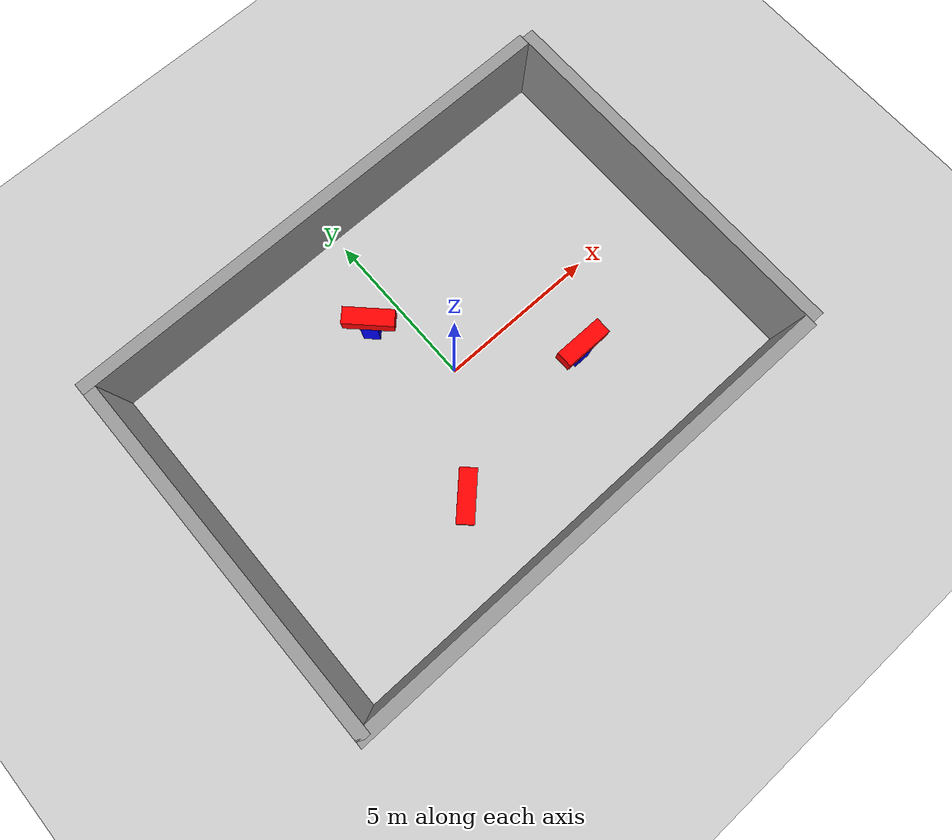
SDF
<sdf version="1.7">
  <world name="default">
    <model name="Workshop">
      <link name="wall_left">
        <collision name="wall_left_Collision">
          <geometry>
            <box>
              <size>15.65 0.375 2.5</size>
            </box>
          </geometry>
          <pose>0.0 0.0 1.25 0.0 -0.0 0.0</pose>
          <max_contacts>10</max_contacts>
          <surface>
            <contact><ode/></contact>
            <bounce/>
            <friction>
              <torsional><ode/></torsional>
              <ode/>
            </friction>
          </surface>
        </collision>
        <visual name="wall_left_Visual">
          <pose>0.0 0.0 1.25 0.0 -0.0 0.0</pose>
          <geometry>
            <box>
              <size>15.65 0.375 2.5</size>
            </box>
          </geometry>
          <material>
            <script>
              <uri>file://media/materials/scripts/gazebo.material</uri>
              <name>Gazebo/Grey</name>
            </script>
            <ambient>0 0 0 1</ambient>
          </material>
        </visual>
        <pose>-0.18625 5.6214 0.0 0.0 0.0 0.0</pose>
        <self_collide>0</self_collide>
        <enable_wind>0</enable_wind>
        <kinematic>0</kinematic>
      </link>
      <link name="wall_right">
        <collision name="wall_right_Collision">
          <geometry>
            <box>
              <size>15.65 0.375 2.5</size>
            </box>
          </geometry>
          <pose>0.0 0.0 1.25 0.0 -0.0 0.0</pose>
          <max_contacts>10</max_contacts>
          <surface>
            <contact><ode/></contact>
            <bounce/>
            <friction>
              <torsional><ode/></torsional>
              <ode/>
            </friction>
          </surface>
        </collision>
        <visual name="wall_right_Visual">
          <pose>0.0 0.0 1.25 0.0 -0.0 0.0</pose>
          <geometry>
            <box>
              <size>15.65 0.375 2.5</size>
            </box>
          </geometry>
          <material>
            <script>
              <uri>file://media/materials/scripts/gazebo.material</uri>
              <name>Gazebo/Grey</name>
            </script>
            <ambient>0 0 0 1</ambient>
          </material>
        </visual>
        <pose>-0.18625 -5.6214 0.0 0.0 0.0 0.0</pose>
        <self_collide>0</self_collide>
        <enable_wind>0</enable_wind>
        <kinematic>0</kinematic>
      </link>
      <link name="wall_top">
        <collision name="wall_top_Collision">
          <geometry>
            <box>
              <size>11.4 0.375 2.5</size>
            </box>
          </geometry>
          <pose>0.0 0.0 1.25 0.0 -0.0 0.0</pose>
          <max_contacts>10</max_contacts>
          <surface>
            <contact><ode/></contact>
            <bounce/>
            <friction>
              <torsional><ode/></torsional>
              <ode/>
            </friction>
          </surface>
        </collision>
        <visual name="wall_top_Visual">
          <pose>0.0 0.0 1.25 0.0 -0.0 0.0</pose>
          <geometry>
            <box>
              <size>11.4 0.375 2.5</size>
            </box>
          </geometry>
          <material>
            <script>
              <uri>file://media/materials/scripts/gazebo.material</uri>
              <name>Gazebo/Grey</name>
            </script>
            <ambient>0 0 0 1</ambient>
          </material>
        </visual>
        <pose>7.82375 0.0 0.0 0.0 0.0 -1.5708</pose>
        <self_collide>0</self_collide>
        <enable_wind>0</enable_wind>
        <kinematic>0</kinematic>
      </link>
      <link name="wall_bottom">
        <collision name="wall_bottom_Collision">
          <geometry>
            <box>
              <size>11.4 0.375 2.5</size>
            </box>
          </geometry>
          <pose>0.0 0.0 1.25 0.0 -0.0 0.0</pose>
          <max_contacts>10</max_contacts>
          <surface>
            <contact><ode/></contact>
            <bounce/>
            <friction>
              <torsional><ode/></torsional>
              <ode/>
            </friction>
          </surface>
        </collision>
        <visual name="wall_bottom_Visual">
          <pose>0.0 0.0 1.25 0.0 -0.0 0.0</pose>
          <geometry>
            <box>
              <size>11.4 0.375 2.5</size>
            </box>
          </geometry>
          <material>
            <script>
              <uri>file://media/materials/scripts/gazebo.material</uri>
              <name>Gazebo/Grey</name>
            </script>
            <ambient>0 0 0 1</ambient>
          </material>
        </visual>
        <pose>-7.82375 0.0 0.0 0.0 0.0 -1.5708</pose>
        <self_collide>0</self_collide>
        <enable_wind>0</enable_wind>
        <kinematic>0</kinematic>
      </link>
      <static>1</static>
      <pose>0 0 0 0 0 0</pose>
    </model>

    <model name="ground_plane">
      <static>1</static>
      <link name="link">
        <collision name="collision">
          <geometry>
            <plane>
              <normal>0 0 1</normal>
              <size>500 500</size>
            </plane>
          </geometry>
          <surface>
            <friction>
              <ode>
                <mu>100</mu>
                <mu2>50</mu2>
              </ode>
              <torsional><ode/></torsional>
            </friction>
            <contact><ode/></contact>
            <bounce/>
          </surface>
          <max_contacts>10</max_contacts>
        </collision>
        <visual name="visual">
          <cast_shadows>0</cast_shadows>
          <geometry>
            <plane>
              <normal>0 0 1</normal>
              <size>500 500</size>
            </plane>
          </geometry>
          <material>
            <script>
              <uri>file://media/materials/scripts/gazebo.material</uri>
              <name>Gazebo/Grey</name>
            </script>
          </material>
        </visual>
        <self_collide>0</self_collide>
        <enable_wind>0</enable_wind>
        <kinematic>0</kinematic>
      </link>
    </model>

    <include>
      <uri>model://T-shape-obstacle</uri>
      <name>T-obstacle-1</name>
      <pose>3 -2 0.0 0.0 0 0</pose>
    </include>

    <include>
      <uri>model://T-shape-obstacle</uri>
      <name>T-obstacle-2</name>
      <pose>-1 2.5 0.0 0 0.0 -0.7854</pose>
    </include>

    <include>
      <uri>model://T-shape-obstacle</uri>
      <name>T-obstacle-3</name>
      <pose>-2.2 -3 0.0 0 0 0.7854</pose>
    </include>

    <physics type="ode">
      <real_time_update_rate>1250</real_time_update_rate>  <!-- Run as fast as possible -->
      <max_step_size>0.002</max_step_size>               <!-- Larger steps = faster sim -->
    </physics>
    <gravity>0 0 -9.8</gravity>

  </world>
</sdf>

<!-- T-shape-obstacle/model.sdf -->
<sdf version="1.6">
  <model name="T-shape-obstacle">
    <static>true</static>

    <!-- Vertical trunk (blue) -->
    <link name="trunk">
      <pose>0 0 0.5 0 0 0</pose>
      <collision name="collision">
        <geometry>
          <box>
            <size>0.5 0.5 1.0</size>
          </box>
        </geometry>
      </collision>
      <visual name="visual">
        <geometry>
          <box>
            <size>0.5 0.5 1.0</size>
          </box>
        </geometry>
        <material>
          <ambient>0.0 0.0 1.0 1.0</ambient>
          <diffuse>0.0 0.0 1.0 1.0</diffuse>
        </material>
      </visual>
    </link>

    <!-- Top horizontal bar (red) -->
    <link name="top_bar">
      <pose>0 0 1.25 0 0 0</pose>
      <collision name="collision">
        <geometry>
          <box>
            <size>1.5 0.5 0.5</size>
          </box>
        </geometry>
      </collision>
      <visual name="visual">
        <geometry>
          <box>
            <size>1.5 0.5 0.5</size>
          </box>
        </geometry>
        <material>
          <ambient>1.0 0.0 0.0 1.0</ambient>
          <diffuse>1.0 0.0 0.0 1.0</diffuse>
        </material>
      </visual>
    </link>

  </model>
</sdf>
